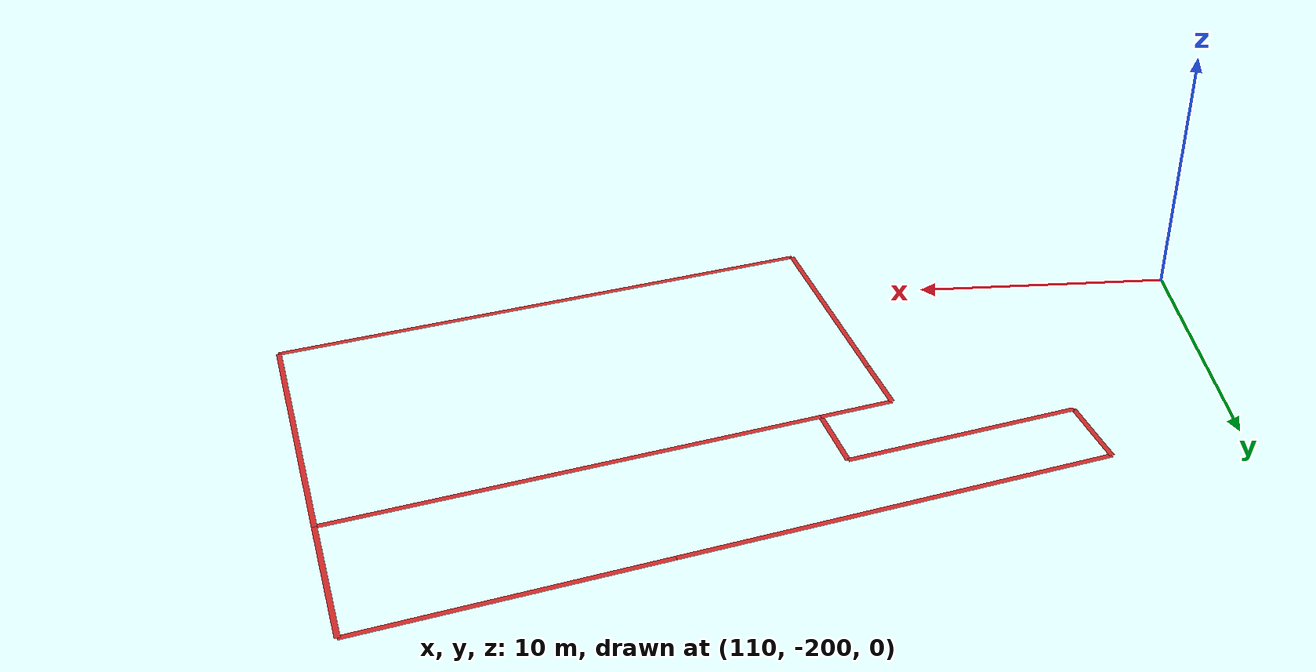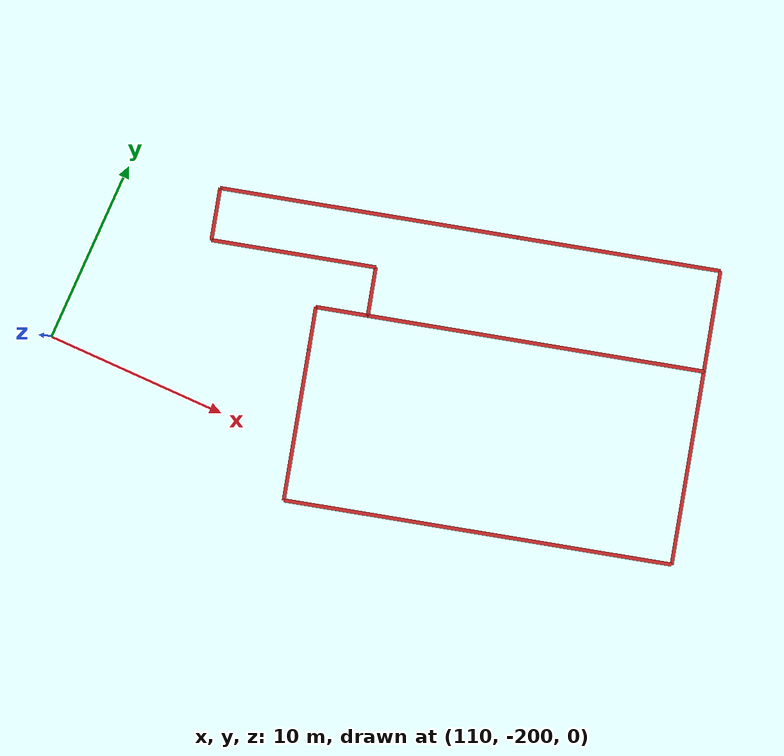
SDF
<sdf version="1.4">
 <world name="default">
  <include><uri>model://sun</uri></include>
  <model name="Кам'яниця Голубовичівська - Тильна 17ст.">
   <static>true</static>
   <pose>128.148479361 -187.648205181 0.0 0 0 0</pose>
   <link name="Кам'яниця Голубовичівська - Тильна 17ст._0">
    <collision name="Кам'яниця Голубовичівська - Тильна 17ст._0">
     <geometry><box><size>16.1992504289 0.2 0</size></box></geometry>
    </collision>
    <visual name="Кам'яниця Голубовичівська - Тильна 17ст._0">
     <geometry><box><size>16.1992504289 0.2 0</size></box></geometry>
     <material>
      <script><uri>file://media/materials/scripts/gazebo.material</uri><name>Gazebo/Red</name></script>
     </material>
    </visual>
    <pose>-5.36379100351 0.720476730173 0 0 0 0.25968578574</pose>
   </link>
   <link name="Кам'яниця Голубовичівська - Тильна 17ст._1">
    <collision name="Кам'яниця Голубовичівська - Тильна 17ст._1">
     <geometry><box><size>2.8329885562 0.2 0</size></box></geometry>
    </collision>
    <visual name="Кам'яниця Голубовичівська - Тильна 17ст._1">
     <geometry><box><size>2.8329885562 0.2 0</size></box></geometry>
     <material>
      <script><uri>file://media/materials/scripts/gazebo.material</uri><name>Gazebo/Red</name></script>
     </material>
    </visual>
    <pose>-12.8304095108 -2.72892666316 0 0 0 1.82880901822</pose>
   </link>
   <link name="Кам'яниця Голубовичівська - Тильна 17ст._2">
    <collision name="Кам'яниця Голубовичівська - Тильна 17ст._2">
     <geometry><box><size>8.95195920279 0.2 0</size></box></geometry>
    </collision>
    <visual name="Кам'яниця Голубовичівська - Тильна 17ст._2">
     <geometry><box><size>8.95195920279 0.2 0</size></box></geometry>
     <material>
      <script><uri>file://media/materials/scripts/gazebo.material</uri><name>Gazebo/Red</name></script>
     </material>
    </visual>
    <pose>-8.14353565664 -2.94747040698 0 0 0 -2.88150577203</pose>
   </link>
   <link name="Кам'яниця Голубовичівська - Тильна 17ст._3">
    <collision name="Кам'яниця Голубовичівська - Тильна 17ст._3">
     <geometry><box><size>2.63444039428 0.2 0</size></box></geometry>
    </collision>
    <visual name="Кам'яниця Голубовичівська - Тильна 17ст._3">
     <geometry><box><size>2.63444039428 0.2 0</size></box></geometry>
     <material>
      <script><uri>file://media/materials/scripts/gazebo.material</uri><name>Gazebo/Red</name></script>
     </material>
    </visual>
    <pose>-3.47890413548 -3.06920712541 0 0 0 1.83123469427</pose>
   </link>
   <link name="Кам'яниця Голубовичівська - Тильна 17ст._4">
    <collision name="Кам'яниця Голубовичівська - Тильна 17ст._4">
     <geometry><box><size>18.3039844074 0.2 0</size></box></geometry>
    </collision>
    <visual name="Кам'яниця Голубовичівська - Тильна 17ст._4">
     <geometry><box><size>18.3039844074 0.2 0</size></box></geometry>
     <material>
      <script><uri>file://media/materials/scripts/gazebo.material</uri><name>Gazebo/Red</name></script>
     </material>
    </visual>
    <pose>5.7057591111 -1.9932713994 0 0 0 -2.88205208615</pose>
   </link>
   <link name="Кам'яниця Голубовичівська - Тильна 17ст._5">
    <collision name="Кам'яниця Голубовичівська - Тильна 17ст._5">
     <geometry><box><size>5.470263864 0.2 0</size></box></geometry>
    </collision>
    <visual name="Кам'яниця Голубовичівська - Тильна 17ст._5">
     <geometry><box><size>5.470263864 0.2 0</size></box></geometry>
     <material>
      <script><uri>file://media/materials/scripts/gazebo.material</uri><name>Gazebo/Red</name></script>
     </material>
    </visual>
    <pose>13.8450541277 2.99786052054 0 0 0 -1.30965007246</pose>
   </link>
   <link name="Кам'яниця Голубовичівська - Тильна 17ст._6">
    <collision name="Кам'яниця Голубовичівська - Тильна 17ст._6">
     <geometry><box><size>11.0459465412 0.2 0</size></box></geometry>
    </collision>
    <visual name="Кам'яниця Голубовичівська - Тильна 17ст._6">
     <geometry><box><size>11.0459465412 0.2 0</size></box></geometry>
     <material>
      <script><uri>file://media/materials/scripts/gazebo.material</uri><name>Gazebo/Red</name></script>
     </material>
    </visual>
    <pose>7.80156754905 4.2202650762 0 0 0 0.260026753407</pose>
   </link>
  </model>
  <model name="office_building_40955754">
   <static>true</static>
   <pose>129.742629615 -195.738306795 0.0 0 0 0</pose>
   <link name="office_building_40955754_0">
    <collision name="office_building_40955754_0">
     <geometry><box><size>21.1247279061 0.2 0</size></box></geometry>
    </collision>
    <visual name="office_building_40955754_0">
     <geometry><box><size>21.1247279061 0.2 0</size></box></geometry>
     <material>
      <script><uri>file://media/materials/scripts/gazebo.material</uri><name>Gazebo/Red</name></script>
     </material>
    </visual>
    <pose>5.44077006101 -4.42979551637 0 0 0 -2.88167756479</pose>
   </link>
   <link name="office_building_40955754_1">
    <collision name="office_building_40955754_1">
     <geometry><box><size>10.5112253522 0.2 0</size></box></geometry>
    </collision>
    <visual name="office_building_40955754_1">
     <geometry><box><size>10.5112253522 0.2 0</size></box></geometry>
     <material>
      <script><uri>file://media/materials/scripts/gazebo.material</uri><name>Gazebo/Red</name></script>
     </material>
    </visual>
    <pose>14.3027228411 3.36514093982 0 0 0 -1.31187422312</pose>
   </link>
   <link name="office_building_40955754_2">
    <collision name="office_building_40955754_2">
     <geometry><box><size>18.3039844074 0.2 0</size></box></geometry>
    </collision>
    <visual name="office_building_40955754_2">
     <geometry><box><size>18.3039844074 0.2 0</size></box></geometry>
     <material>
      <script><uri>file://media/materials/scripts/gazebo.material</uri><name>Gazebo/Red</name></script>
     </material>
    </visual>
    <pose>4.11160885749 6.09683021479 0 0 0 0.25954056744</pose>
   </link>
   <link name="office_building_40955754_3">
    <collision name="office_building_40955754_3">
     <geometry><box><size>2.82965051954 0.2 0</size></box></geometry>
    </collision>
    <visual name="office_building_40955754_3">
     <geometry><box><size>2.82965051954 0.2 0</size></box></geometry>
     <material>
      <script><uri>file://media/materials/scripts/gazebo.material</uri><name>Gazebo/Red</name></script>
     </material>
    </visual>
    <pose>-6.10154934671 3.38592171299 0 0 0 0.258865713489</pose>
   </link>
   <link name="office_building_40955754_4">
    <collision name="office_building_40955754_4">
     <geometry><box><size>2.31645668639 0.2 0</size></box></geometry>
    </collision>
    <visual name="office_building_40955754_4">
     <geometry><box><size>2.31645668639 0.2 0</size></box></geometry>
     <material>
      <script><uri>file://media/materials/scripts/gazebo.material</uri><name>Gazebo/Red</name></script>
     </material>
    </visual>
    <pose>-7.16896734956 1.90511887233 0 0 0 1.83303826799</pose>
   </link>
   <link name="office_building_40955754_5">
    <collision name="office_building_40955754_5">
     <geometry><box><size>8.20459727345 0.2 0</size></box></geometry>
    </collision>
    <visual name="office_building_40955754_5">
     <geometry><box><size>8.20459727345 0.2 0</size></box></geometry>
     <material>
      <script><uri>file://media/materials/scripts/gazebo.material</uri><name>Gazebo/Red</name></script>
     </material>
    </visual>
    <pose>-5.8177619254 -3.17890908206 0 0 0 1.8298675767</pose>
   </link>
  </model>
 </world>
</sdf>
